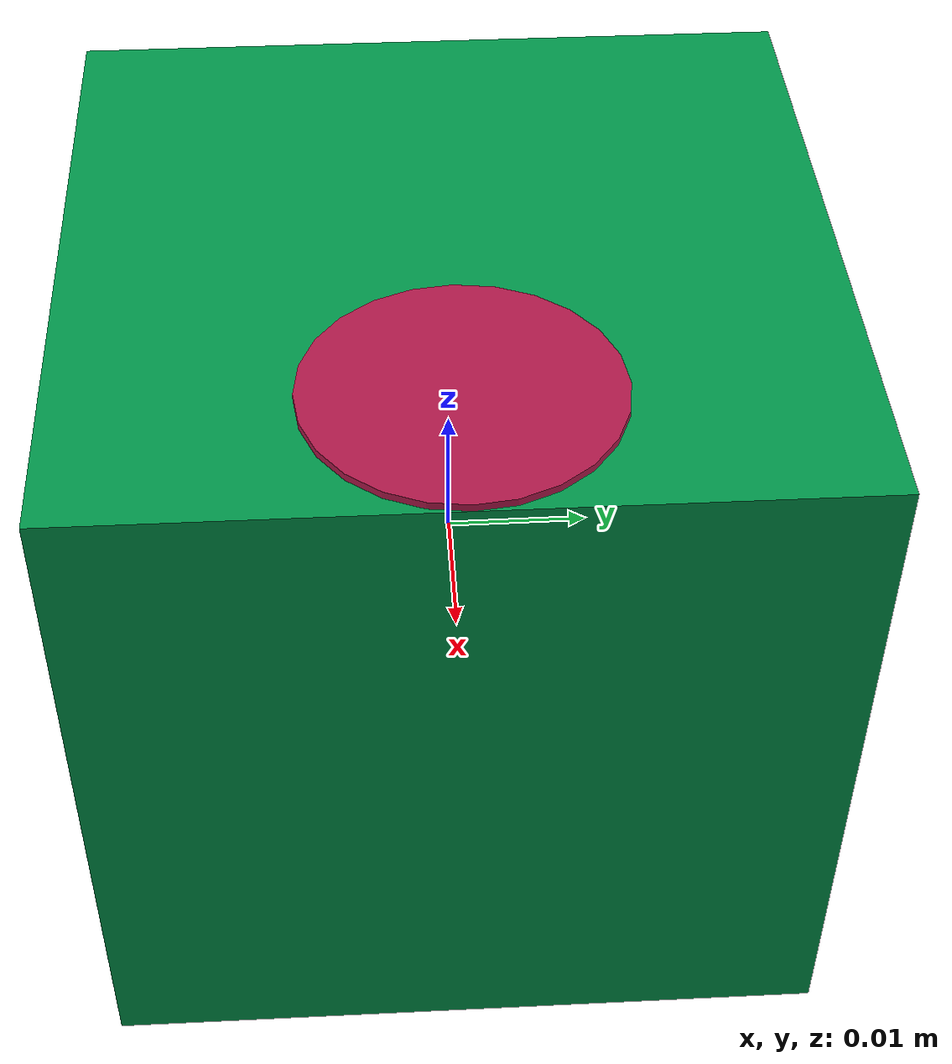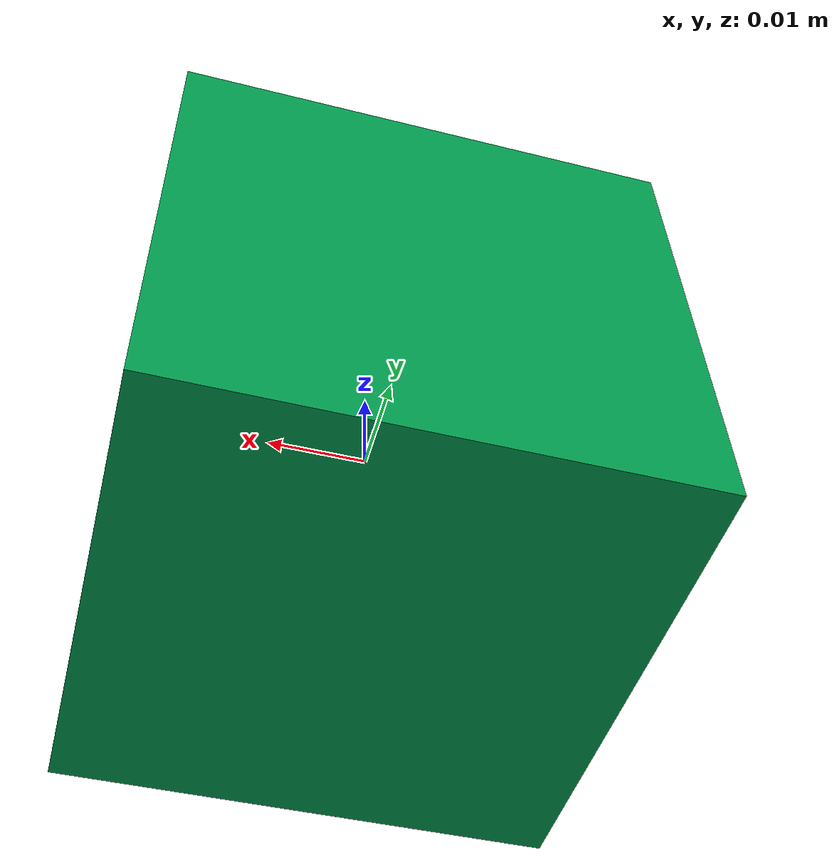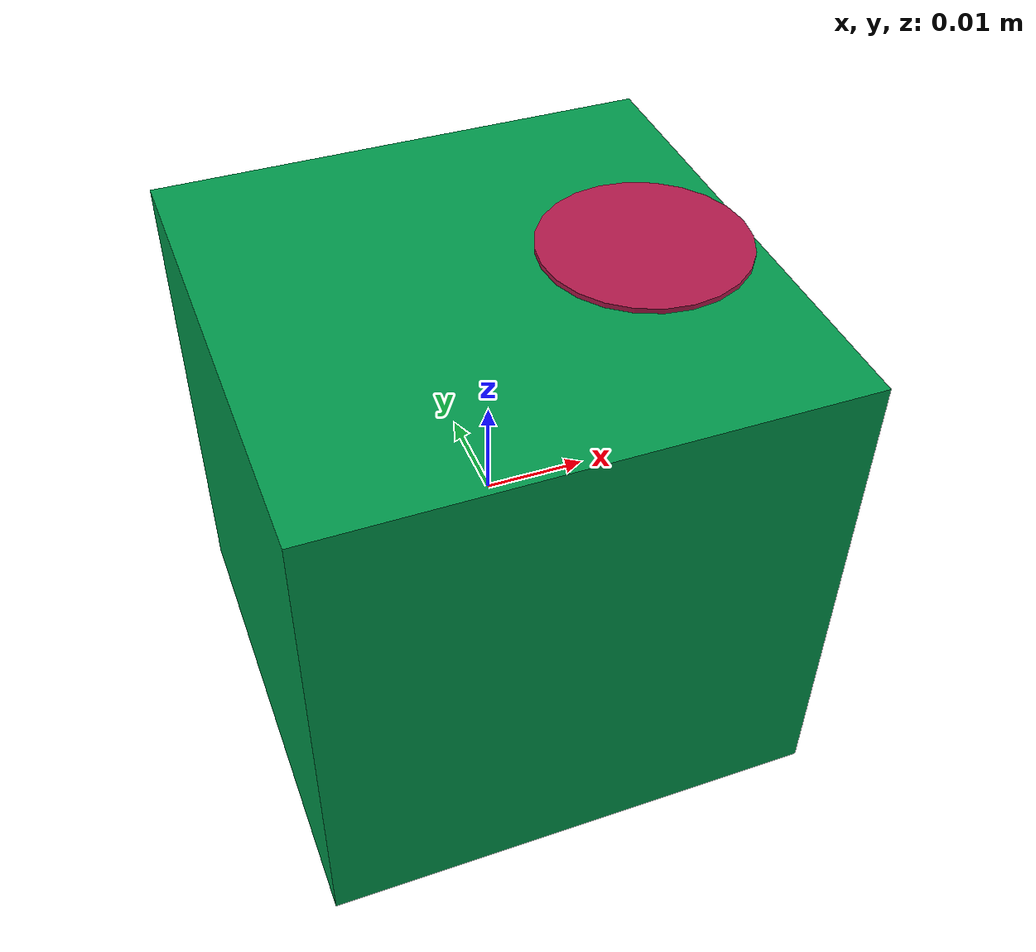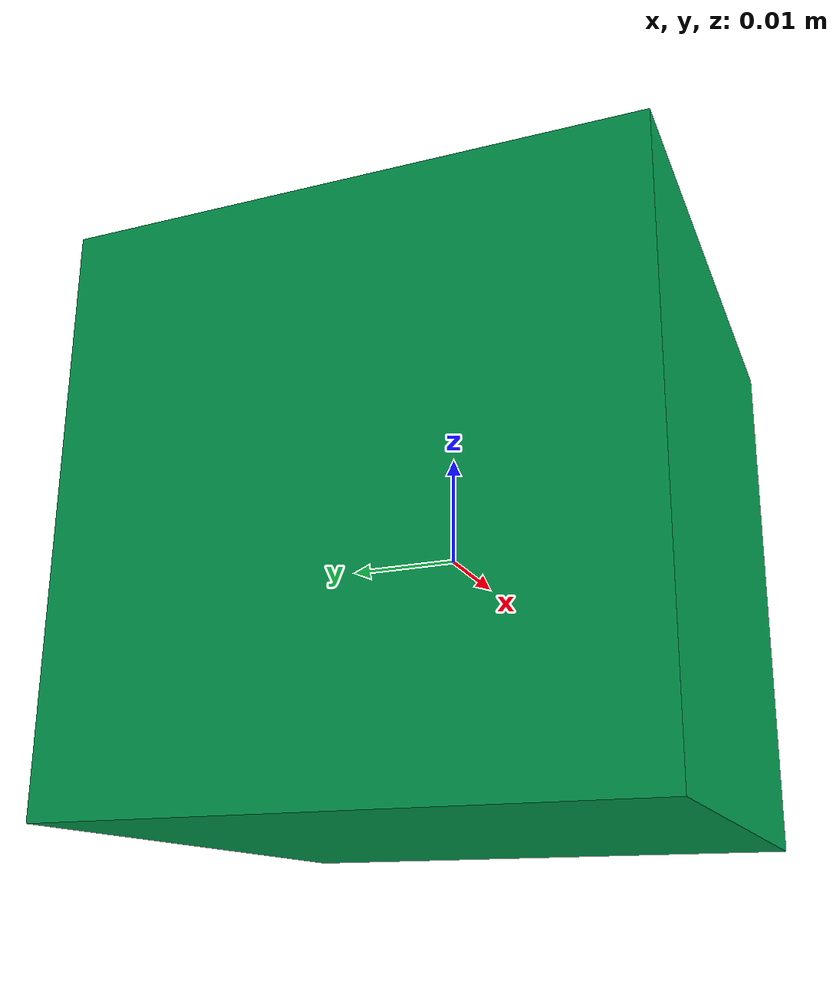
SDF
<?xml version="1.0"?>
<sdf version="1.7">
  <model name="000_my_box">
    <link name="box_base_link">
      <inertial>
        <mass>1.</mass>
        <inertia>
          <ixx>4.167e-4</ixx>
          <ixy>0</ixy>
          <ixz>0</ixz>
          <iyy>4.167e-4</iyy>
          <iyz>0</iyz>
          <izz>4.167e-4</izz>
        </inertia>
      </inertial>
      <visual name="box_visual">
        <pose>0 0 0 0 0 0</pose>
        <geometry>
          <box>
          <size> 0.05 0.05 0.05 </size>
          </box>
        </geometry>
        <material>
          <diffuse> 0.0 0.6 0.3 1.0</diffuse>
        </material>
      </visual>
      <collision name="cylinder_collision">
        <pose>0 0 0 0 0 0</pose>
        <geometry>
          <box>
          <size> 0.05 0.05 0.05 </size>
          </box>
        </geometry>
      </collision>
    </link>

    <!-- Add a link for visual, easy to see when spinning -->
    <link name="marker">
      <visual name="marker">
      <pose> 0.015 0 0.025 0 0 0 </pose>
        <geometry>
          <cylinder>
            <radius> 0.01 </radius>
            <length> 0.001 </length>
            </cylinder>
        </geometry>
        <material>
          <diffuse> 0.7 0.1 0.3 1.0</diffuse>
        </material>
      </visual>
    </link>

    <joint name="joint" type="fixed">
      <parent>box_base_link</parent>
      <child>marker</child>
    </joint>

  </model>
</sdf>
